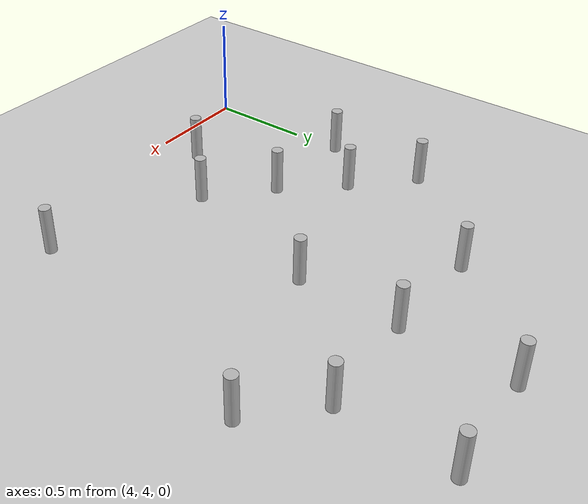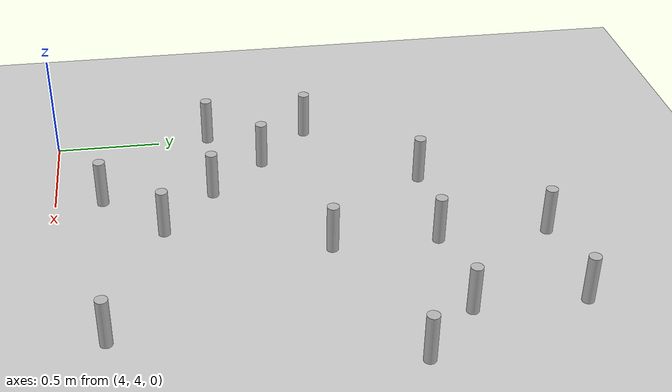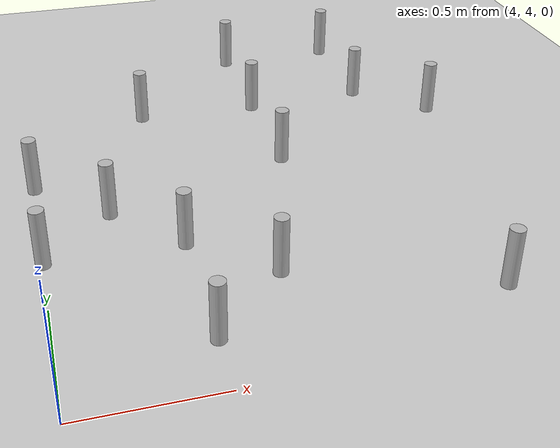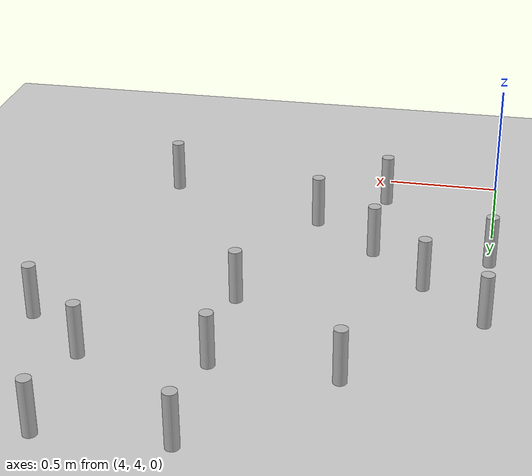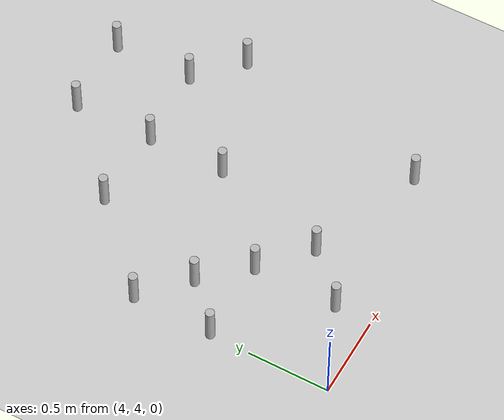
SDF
<sdf version="1.6">
 <world name="default">
  <model name="ground_plane">
   <static>1</static>
   <link name="link">
    <collision name="collision">
     <geometry><plane><normal>0 0 1</normal><size>100 100</size></plane></geometry>
     <surface><friction><ode><mu>100</mu><mu2>50</mu2></ode></friction></surface>
    </collision>
    <visual name="visual">
     <cast_shadows>0</cast_shadows>
     <geometry><plane><normal>0 0 1</normal><size>100 100</size></plane></geometry>
     <material>
      <script><uri>file://media/materials/scripts/gazebo.material</uri><name>Gazebo/Grey</name></script>
     </material>
    </visual>
   </link>
  </model>
  <model name="can5.54.240172933">
   <link name="link">
    <pose>0 0 0.115 0 -0 0</pose>
    <inertial>
     <mass>0.39</mass>
     <inertia><ixx>0.00058</ixx><ixy>0</ixy><ixz>0</ixz><iyy>0.00058</iyy><iyz>0</iyz><izz>0.00019</izz></inertia>
    </inertial>
    <collision name="collision">
     <geometry><cylinder><radius>0.0275</radius><length>0.23</length></cylinder></geometry>
    </collision>
    <visual name="visual">
     <geometry><cylinder><radius>0.0275</radius><length>0.23</length></cylinder></geometry>
     <material>
      <script>
       <uri>model://beer/materials/scripts</uri>
       <uri>model://beer/materials/textures</uri>
       <name>Beer/Diffuse</name>
      </script>
     </material>
    </visual>
   </link>
   <pose>5.5 4.240172933 -2e-06 1e-06 0 -9.5e-05</pose>
  </model>
  <model name="can5.55.74418061242">
   <link name="link">
    <pose>0 0 0.115 0 -0 0</pose>
    <inertial>
     <mass>0.39</mass>
     <inertia><ixx>0.00058</ixx><ixy>0</ixy><ixz>0</ixz><iyy>0.00058</iyy><iyz>0</iyz><izz>0.00019</izz></inertia>
    </inertial>
    <collision name="collision">
     <geometry><cylinder><radius>0.0275</radius><length>0.23</length></cylinder></geometry>
    </collision>
    <visual name="visual">
     <geometry><cylinder><radius>0.0275</radius><length>0.23</length></cylinder></geometry>
     <material>
      <script>
       <uri>model://beer/materials/scripts</uri>
       <uri>model://beer/materials/textures</uri>
       <name>Beer/Diffuse</name>
      </script>
     </material>
    </visual>
   </link>
   <pose>5.5 5.74418061242 -2e-06 1e-06 0 -9.5e-05</pose>
  </model>
  <model name="can5.05.23609709394">
   <link name="link">
    <pose>0 0 0.115 0 -0 0</pose>
    <inertial>
     <mass>0.39</mass>
     <inertia><ixx>0.00058</ixx><ixy>0</ixy><ixz>0</ixz><iyy>0.00058</iyy><iyz>0</iyz><izz>0.00019</izz></inertia>
    </inertial>
    <collision name="collision">
     <geometry><cylinder><radius>0.0275</radius><length>0.23</length></cylinder></geometry>
    </collision>
    <visual name="visual">
     <geometry><cylinder><radius>0.0275</radius><length>0.23</length></cylinder></geometry>
     <material>
      <script>
       <uri>model://beer/materials/scripts</uri>
       <uri>model://beer/materials/textures</uri>
       <name>Beer/Diffuse</name>
      </script>
     </material>
    </visual>
   </link>
   <pose>5.0 5.23609709394 -2e-06 1e-06 0 -9.5e-05</pose>
  </model>
  <model name="can5.05.71921450227">
   <link name="link">
    <pose>0 0 0.115 0 -0 0</pose>
    <inertial>
     <mass>0.39</mass>
     <inertia><ixx>0.00058</ixx><ixy>0</ixy><ixz>0</ixz><iyy>0.00058</iyy><iyz>0</iyz><izz>0.00019</izz></inertia>
    </inertial>
    <collision name="collision">
     <geometry><cylinder><radius>0.0275</radius><length>0.23</length></cylinder></geometry>
    </collision>
    <visual name="visual">
     <geometry><cylinder><radius>0.0275</radius><length>0.23</length></cylinder></geometry>
     <material>
      <script>
       <uri>model://beer/materials/scripts</uri>
       <uri>model://beer/materials/textures</uri>
       <name>Beer/Diffuse</name>
      </script>
     </material>
    </visual>
   </link>
   <pose>5.0 5.71921450227 -2e-06 1e-06 0 -9.5e-05</pose>
  </model>
  <model name="can5.56.24059466734">
   <link name="link">
    <pose>0 0 0.115 0 -0 0</pose>
    <inertial>
     <mass>0.39</mass>
     <inertia><ixx>0.00058</ixx><ixy>0</ixy><ixz>0</ixz><iyy>0.00058</iyy><iyz>0</iyz><izz>0.00019</izz></inertia>
    </inertial>
    <collision name="collision">
     <geometry><cylinder><radius>0.0275</radius><length>0.23</length></cylinder></geometry>
    </collision>
    <visual name="visual">
     <geometry><cylinder><radius>0.0275</radius><length>0.23</length></cylinder></geometry>
     <material>
      <script>
       <uri>model://beer/materials/scripts</uri>
       <uri>model://beer/materials/textures</uri>
       <name>Beer/Diffuse</name>
      </script>
     </material>
    </visual>
   </link>
   <pose>5.5 6.24059466734 -2e-06 1e-06 0 -9.5e-05</pose>
  </model>
  <model name="can4.54.74141569136">
   <link name="link">
    <pose>0 0 0.115 0 -0 0</pose>
    <inertial>
     <mass>0.39</mass>
     <inertia><ixx>0.00058</ixx><ixy>0</ixy><ixz>0</ixz><iyy>0.00058</iyy><iyz>0</iyz><izz>0.00019</izz></inertia>
    </inertial>
    <collision name="collision">
     <geometry><cylinder><radius>0.0275</radius><length>0.23</length></cylinder></geometry>
    </collision>
    <visual name="visual">
     <geometry><cylinder><radius>0.0275</radius><length>0.23</length></cylinder></geometry>
     <material>
      <script>
       <uri>model://beer/materials/scripts</uri>
       <uri>model://beer/materials/textures</uri>
       <name>Beer/Diffuse</name>
      </script>
     </material>
    </visual>
   </link>
   <pose>4.5 4.74141569136 -2e-06 1e-06 0 -9.5e-05</pose>
  </model>
  <model name="can4.54.22302803518">
   <link name="link">
    <pose>0 0 0.115 0 -0 0</pose>
    <inertial>
     <mass>0.39</mass>
     <inertia><ixx>0.00058</ixx><ixy>0</ixy><ixz>0</ixz><iyy>0.00058</iyy><iyz>0</iyz><izz>0.00019</izz></inertia>
    </inertial>
    <collision name="collision">
     <geometry><cylinder><radius>0.0275</radius><length>0.23</length></cylinder></geometry>
    </collision>
    <visual name="visual">
     <geometry><cylinder><radius>0.0275</radius><length>0.23</length></cylinder></geometry>
     <material>
      <script>
       <uri>model://beer/materials/scripts</uri>
       <uri>model://beer/materials/textures</uri>
       <name>Beer/Diffuse</name>
      </script>
     </material>
    </visual>
   </link>
   <pose>4.5 4.22302803518 -2e-06 1e-06 0 -9.5e-05</pose>
  </model>
  <model name="can4.04.74981216417">
   <link name="link">
    <pose>0 0 0.115 0 -0 0</pose>
    <inertial>
     <mass>0.39</mass>
     <inertia><ixx>0.00058</ixx><ixy>0</ixy><ixz>0</ixz><iyy>0.00058</iyy><iyz>0</iyz><izz>0.00019</izz></inertia>
    </inertial>
    <collision name="collision">
     <geometry><cylinder><radius>0.0275</radius><length>0.23</length></cylinder></geometry>
    </collision>
    <visual name="visual">
     <geometry><cylinder><radius>0.0275</radius><length>0.23</length></cylinder></geometry>
     <material>
      <script>
       <uri>model://beer/materials/scripts</uri>
       <uri>model://beer/materials/textures</uri>
       <name>Beer/Diffuse</name>
      </script>
     </material>
    </visual>
   </link>
   <pose>4.0 4.74981216417 -2e-06 1e-06 0 -9.5e-05</pose>
  </model>
  <model name="can4.55.73676120724">
   <link name="link">
    <pose>0 0 0.115 0 -0 0</pose>
    <inertial>
     <mass>0.39</mass>
     <inertia><ixx>0.00058</ixx><ixy>0</ixy><ixz>0</ixz><iyy>0.00058</iyy><iyz>0</iyz><izz>0.00019</izz></inertia>
    </inertial>
    <collision name="collision">
     <geometry><cylinder><radius>0.0275</radius><length>0.23</length></cylinder></geometry>
    </collision>
    <visual name="visual">
     <geometry><cylinder><radius>0.0275</radius><length>0.23</length></cylinder></geometry>
     <material>
      <script>
       <uri>model://beer/materials/scripts</uri>
       <uri>model://beer/materials/textures</uri>
       <name>Beer/Diffuse</name>
      </script>
     </material>
    </visual>
   </link>
   <pose>4.5 5.73676120724 -2e-06 1e-06 0 -9.5e-05</pose>
  </model>
  <model name="can4.781146468154.5">
   <link name="link">
    <pose>0 0 0.115 0 -0 0</pose>
    <inertial>
     <mass>0.39</mass>
     <inertia><ixx>0.00058</ixx><ixy>0</ixy><ixz>0</ixz><iyy>0.00058</iyy><iyz>0</iyz><izz>0.00019</izz></inertia>
    </inertial>
    <collision name="collision">
     <geometry><cylinder><radius>0.0275</radius><length>0.23</length></cylinder></geometry>
    </collision>
    <visual name="visual">
     <geometry><cylinder><radius>0.0275</radius><length>0.23</length></cylinder></geometry>
     <material>
      <script>
       <uri>model://beer/materials/scripts</uri>
       <uri>model://beer/materials/textures</uri>
       <name>Beer/Diffuse</name>
      </script>
     </material>
    </visual>
   </link>
   <pose>4.78114646815 4.5 -2e-06 1e-06 0 -9.5e-05</pose>
  </model>
  <model name="can4.05.24521886567">
   <link name="link">
    <pose>0 0 0.115 0 -0 0</pose>
    <inertial>
     <mass>0.39</mass>
     <inertia><ixx>0.00058</ixx><ixy>0</ixy><ixz>0</ixz><iyy>0.00058</iyy><iyz>0</iyz><izz>0.00019</izz></inertia>
    </inertial>
    <collision name="collision">
     <geometry><cylinder><radius>0.0275</radius><length>0.23</length></cylinder></geometry>
    </collision>
    <visual name="visual">
     <geometry><cylinder><radius>0.0275</radius><length>0.23</length></cylinder></geometry>
     <material>
      <script>
       <uri>model://beer/materials/scripts</uri>
       <uri>model://beer/materials/textures</uri>
       <name>Beer/Diffuse</name>
      </script>
     </material>
    </visual>
   </link>
   <pose>4.0 5.24521886567 -2e-06 1e-06 0 -9.5e-05</pose>
  </model>
  <model name="can5.06.22203654022">
   <link name="link">
    <pose>0 0 0.115 0 -0 0</pose>
    <inertial>
     <mass>0.39</mass>
     <inertia><ixx>0.00058</ixx><ixy>0</ixy><ixz>0</ixz><iyy>0.00058</iyy><iyz>0</iyz><izz>0.00019</izz></inertia>
    </inertial>
    <collision name="collision">
     <geometry><cylinder><radius>0.0275</radius><length>0.23</length></cylinder></geometry>
    </collision>
    <visual name="visual">
     <geometry><cylinder><radius>0.0275</radius><length>0.23</length></cylinder></geometry>
     <material>
      <script>
       <uri>model://beer/materials/scripts</uri>
       <uri>model://beer/materials/textures</uri>
       <name>Beer/Diffuse</name>
      </script>
     </material>
    </visual>
   </link>
   <pose>5.0 6.22203654022 -2e-06 1e-06 0 -9.5e-05</pose>
  </model>
  <model name="can5.767497971845.5">
   <link name="link">
    <pose>0 0 0.115 0 -0 0</pose>
    <inertial>
     <mass>0.39</mass>
     <inertia><ixx>0.00058</ixx><ixy>0</ixy><ixz>0</ixz><iyy>0.00058</iyy><iyz>0</iyz><izz>0.00019</izz></inertia>
    </inertial>
    <collision name="collision">
     <geometry><cylinder><radius>0.0275</radius><length>0.23</length></cylinder></geometry>
    </collision>
    <visual name="visual">
     <geometry><cylinder><radius>0.0275</radius><length>0.23</length></cylinder></geometry>
     <material>
      <script>
       <uri>model://beer/materials/scripts</uri>
       <uri>model://beer/materials/textures</uri>
       <name>Beer/Diffuse</name>
      </script>
     </material>
    </visual>
   </link>
   <pose>5.76749797184 5.5 -2e-06 1e-06 0 -9.5e-05</pose>
  </model>
  <model name="can4.262239643425.0">
   <link name="link">
    <pose>0 0 0.115 0 -0 0</pose>
    <inertial>
     <mass>0.39</mass>
     <inertia><ixx>0.00058</ixx><ixy>0</ixy><ixz>0</ixz><iyy>0.00058</iyy><iyz>0</iyz><izz>0.00019</izz></inertia>
    </inertial>
    <collision name="collision">
     <geometry><cylinder><radius>0.0275</radius><length>0.23</length></cylinder></geometry>
    </collision>
    <visual name="visual">
     <geometry><cylinder><radius>0.0275</radius><length>0.23</length></cylinder></geometry>
     <material>
      <script>
       <uri>model://beer/materials/scripts</uri>
       <uri>model://beer/materials/textures</uri>
       <name>Beer/Diffuse</name>
      </script>
     </material>
    </visual>
   </link>
   <pose>4.26223964342 5.0 -2e-06 1e-06 0 -9.5e-05</pose>
  </model>
 </world>
</sdf>
